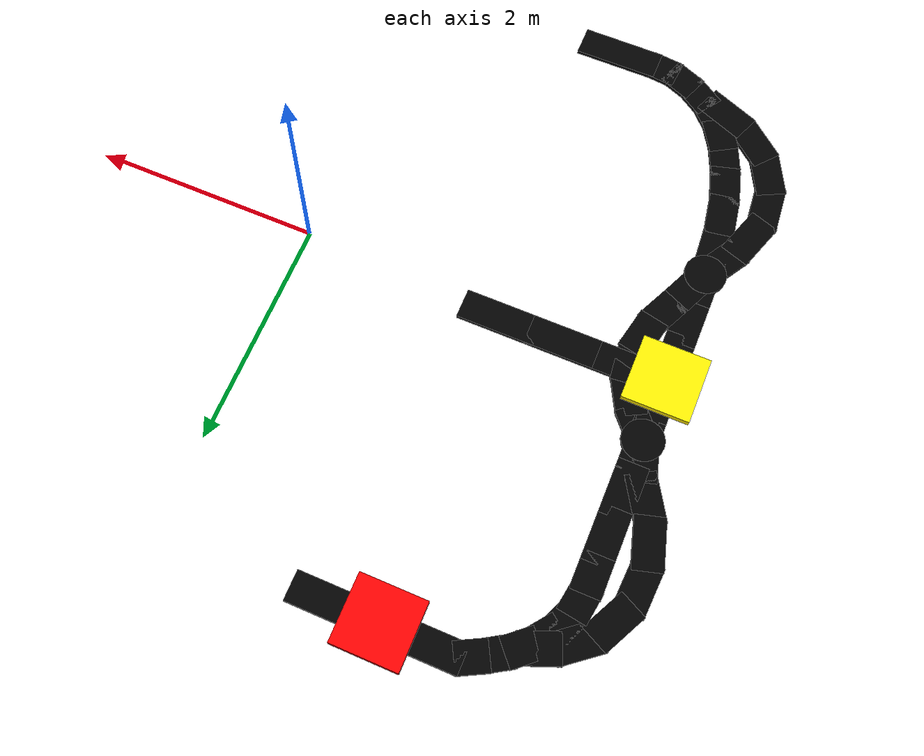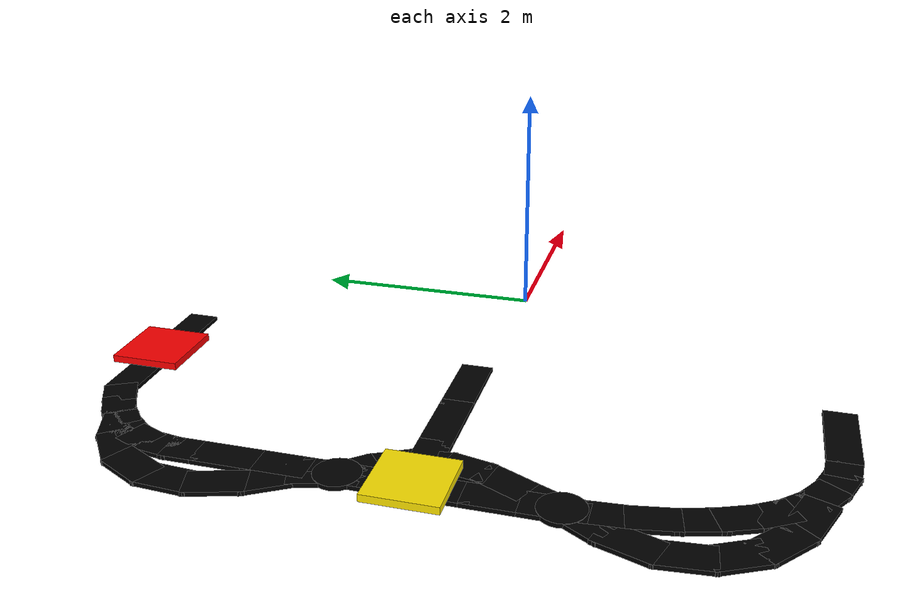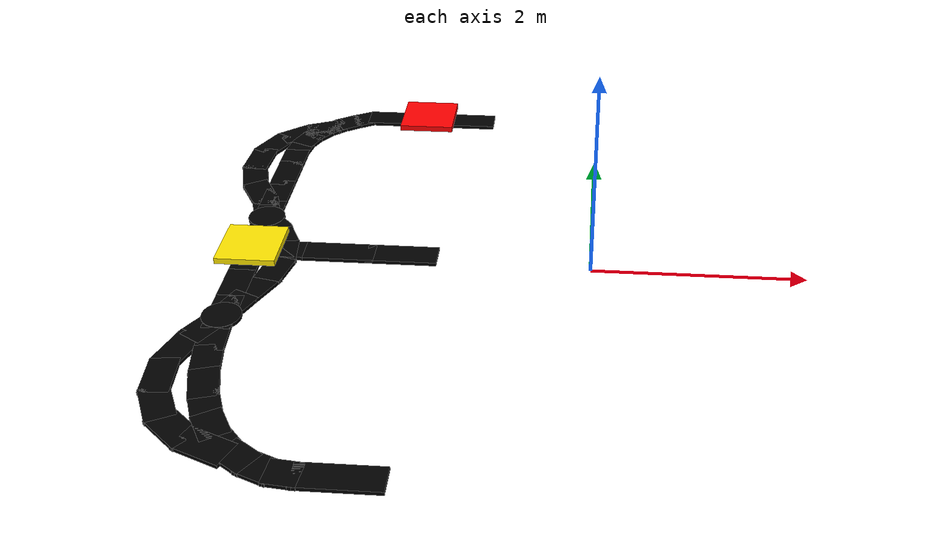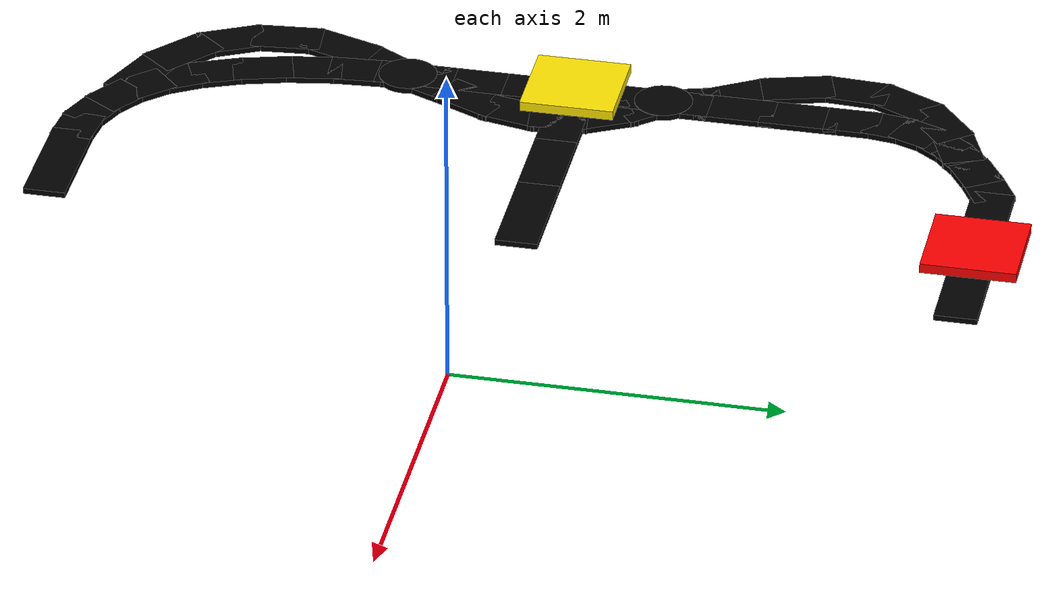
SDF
<sdf version="1.6">
 <world name="agv_factory_v4_smooth_intersection">
  <include><uri>model://sun</uri></include>
  <model name="line_top_01">
   <static>true</static>
   <pose>-2.2250 2.8000 0.0175 0 0 0.0000</pose>
   <link name="link">
    <collision name="collision"><geometry><box><size>0.7300 0.2600 0.0350</size></box></geometry></collision>
    <visual name="visual">
     <geometry><box><size>0.7300 0.2600 0.0350</size></box></geometry>
     <material><ambient>0 0 0 1</ambient><diffuse>0 0 0 1</diffuse></material>
    </visual>
   </link>
  </model>
  <model name="line_top_02">
   <static>true</static>
   <pose>-1.5500 2.8000 0.0175 0 0 0.0000</pose>
   <link name="link">
    <collision name="collision"><geometry><box><size>0.7800 0.2600 0.0350</size></box></geometry></collision>
    <visual name="visual">
     <geometry><box><size>0.7800 0.2600 0.0350</size></box></geometry>
     <material><ambient>0 0 0 1</ambient><diffuse>0 0 0 1</diffuse></material>
    </visual>
   </link>
  </model>
  <model name="line_bottom_06">
   <static>true</static>
   <pose>-1.8250 -2.8000 0.0175 0 0 3.1416</pose>
   <link name="link">
    <collision name="collision"><geometry><box><size>0.7300 0.2600 0.0350</size></box></geometry></collision>
    <visual name="visual">
     <geometry><box><size>0.7300 0.2600 0.0350</size></box></geometry>
     <material><ambient>0 0 0 1</ambient><diffuse>0 0 0 1</diffuse></material>
    </visual>
   </link>
  </model>
  <model name="curve_bottom_left_01">
   <static>true</static>
   <pose>-2.2500 -2.7900 0.0175 0 0 3.0419</pose>
   <link name="link">
    <collision name="collision"><geometry><box><size>0.2810 0.2600 0.0350</size></box></geometry></collision>
    <visual name="visual">
     <geometry><box><size>0.2810 0.2600 0.0350</size></box></geometry>
     <material><ambient>0 0 0 1</ambient><diffuse>0 0 0 1</diffuse></material>
    </visual>
   </link>
  </model>
  <model name="curve_bottom_left_02">
   <static>true</static>
   <pose>-2.4500 -2.7400 0.0175 0 0 2.7611</pose>
   <link name="link">
    <collision name="collision"><geometry><box><size>0.2954 0.2600 0.0350</size></box></geometry></collision>
    <visual name="visual">
     <geometry><box><size>0.2954 0.2600 0.0350</size></box></geometry>
     <material><ambient>0 0 0 1</ambient><diffuse>0 0 0 1</diffuse></material>
    </visual>
   </link>
  </model>
  <model name="curve_bottom_left_03">
   <static>true</static>
   <pose>-2.6400 -2.6400 0.0175 0 0 2.5536</pose>
   <link name="link">
    <collision name="collision"><geometry><box><size>0.2963 0.2600 0.0350</size></box></geometry></collision>
    <visual name="visual">
     <geometry><box><size>0.2963 0.2600 0.0350</size></box></geometry>
     <material><ambient>0 0 0 1</ambient><diffuse>0 0 0 1</diffuse></material>
    </visual>
   </link>
  </model>
  <model name="curve_bottom_left_04">
   <static>true</static>
   <pose>-2.8050 -2.5000 0.0175 0 0 2.3239</pose>
   <link name="link">
    <collision name="collision"><geometry><box><size>0.2993 0.2600 0.0350</size></box></geometry></collision>
    <visual name="visual">
     <geometry><box><size>0.2993 0.2600 0.0350</size></box></geometry>
     <material><ambient>0 0 0 1</ambient><diffuse>0 0 0 1</diffuse></material>
    </visual>
   </link>
  </model>
  <model name="curve_bottom_left_05">
   <static>true</static>
   <pose>-2.9400 -2.3200 0.0175 0 0 2.1112</pose>
   <link name="link">
    <collision name="collision"><geometry><box><size>0.3132 0.2600 0.0350</size></box></geometry></collision>
    <visual name="visual">
     <geometry><box><size>0.3132 0.2600 0.0350</size></box></geometry>
     <material><ambient>0 0 0 1</ambient><diffuse>0 0 0 1</diffuse></material>
    </visual>
   </link>
  </model>
  <model name="curve_bottom_left_06">
   <static>true</static>
   <pose>-3.0500 -2.1000 0.0175 0 0 1.9656</pose>
   <link name="link">
    <collision name="collision"><geometry><box><size>0.3400 0.2600 0.0350</size></box></geometry></collision>
    <visual name="visual">
     <geometry><box><size>0.3400 0.2600 0.0350</size></box></geometry>
     <material><ambient>0 0 0 1</ambient><diffuse>0 0 0 1</diffuse></material>
    </visual>
   </link>
  </model>
  <model name="curve_bottom_left_07">
   <static>true</static>
   <pose>-3.1400 -1.8400 0.0175 0 0 1.8491</pose>
   <link name="link">
    <collision name="collision"><geometry><box><size>0.3712 0.2600 0.0350</size></box></geometry></collision>
    <visual name="visual">
     <geometry><box><size>0.3712 0.2600 0.0350</size></box></geometry>
     <material><ambient>0 0 0 1</ambient><diffuse>0 0 0 1</diffuse></material>
    </visual>
   </link>
  </model>
  <model name="curve_bottom_left_08">
   <static>true</static>
   <pose>-3.2050 -1.5500 0.0175 0 0 1.7359</pose>
   <link name="link">
    <collision name="collision"><geometry><box><size>0.3841 0.2600 0.0350</size></box></geometry></collision>
    <visual name="visual">
     <geometry><box><size>0.3841 0.2600 0.0350</size></box></geometry>
     <material><ambient>0 0 0 1</ambient><diffuse>0 0 0 1</diffuse></material>
    </visual>
   </link>
  </model>
  <model name="curve_bottom_left_09">
   <static>true</static>
   <pose>-3.2400 -1.2500 0.0175 0 0 1.6374</pose>
   <link name="link">
    <collision name="collision"><geometry><box><size>0.3807 0.2600 0.0350</size></box></geometry></collision>
    <visual name="visual">
     <geometry><box><size>0.3807 0.2600 0.0350</size></box></geometry>
     <material><ambient>0 0 0 1</ambient><diffuse>0 0 0 1</diffuse></material>
    </visual>
   </link>
  </model>
  <model name="line_left_01">
   <static>true</static>
   <pose>-3.2500 -0.9000 0.0175 0 0 1.5708</pose>
   <link name="link">
    <collision name="collision"><geometry><box><size>0.4800 0.2600 0.0350</size></box></geometry></collision>
    <visual name="visual">
     <geometry><box><size>0.4800 0.2600 0.0350</size></box></geometry>
     <material><ambient>0 0 0 1</ambient><diffuse>0 0 0 1</diffuse></material>
    </visual>
   </link>
  </model>
  <model name="line_left_02">
   <static>true</static>
   <pose>-3.2500 -0.5000 0.0175 0 0 1.5708</pose>
   <link name="link">
    <collision name="collision"><geometry><box><size>0.4800 0.2600 0.0350</size></box></geometry></collision>
    <visual name="visual">
     <geometry><box><size>0.4800 0.2600 0.0350</size></box></geometry>
     <material><ambient>0 0 0 1</ambient><diffuse>0 0 0 1</diffuse></material>
    </visual>
   </link>
  </model>
  <model name="line_left_03">
   <static>true</static>
   <pose>-3.2500 -0.1000 0.0175 0 0 1.5708</pose>
   <link name="link">
    <collision name="collision"><geometry><box><size>0.4800 0.2600 0.0350</size></box></geometry></collision>
    <visual name="visual">
     <geometry><box><size>0.4800 0.2600 0.0350</size></box></geometry>
     <material><ambient>0 0 0 1</ambient><diffuse>0 0 0 1</diffuse></material>
    </visual>
   </link>
  </model>
  <model name="line_left_04">
   <static>true</static>
   <pose>-3.2500 0.3000 0.0175 0 0 1.5708</pose>
   <link name="link">
    <collision name="collision"><geometry><box><size>0.4800 0.2600 0.0350</size></box></geometry></collision>
    <visual name="visual">
     <geometry><box><size>0.4800 0.2600 0.0350</size></box></geometry>
     <material><ambient>0 0 0 1</ambient><diffuse>0 0 0 1</diffuse></material>
    </visual>
   </link>
  </model>
  <model name="line_left_05">
   <static>true</static>
   <pose>-3.2500 0.7000 0.0175 0 0 1.5708</pose>
   <link name="link">
    <collision name="collision"><geometry><box><size>0.4800 0.2600 0.0350</size></box></geometry></collision>
    <visual name="visual">
     <geometry><box><size>0.4800 0.2600 0.0350</size></box></geometry>
     <material><ambient>0 0 0 1</ambient><diffuse>0 0 0 1</diffuse></material>
    </visual>
   </link>
  </model>
  <model name="line_left_06">
   <static>true</static>
   <pose>-3.2500 1.1000 0.0175 0 0 1.5708</pose>
   <link name="link">
    <collision name="collision"><geometry><box><size>0.4800 0.2600 0.0350</size></box></geometry></collision>
    <visual name="visual">
     <geometry><box><size>0.4800 0.2600 0.0350</size></box></geometry>
     <material><ambient>0 0 0 1</ambient><diffuse>0 0 0 1</diffuse></material>
    </visual>
   </link>
  </model>
  <model name="line_left_07">
   <static>true</static>
   <pose>-3.2500 1.5000 0.0175 0 0 1.5708</pose>
   <link name="link">
    <collision name="collision"><geometry><box><size>0.4800 0.2600 0.0350</size></box></geometry></collision>
    <visual name="visual">
     <geometry><box><size>0.4800 0.2600 0.0350</size></box></geometry>
     <material><ambient>0 0 0 1</ambient><diffuse>0 0 0 1</diffuse></material>
    </visual>
   </link>
  </model>
  <model name="line_left_08">
   <static>true</static>
   <pose>-3.2500 1.8250 0.0175 0 0 1.5708</pose>
   <link name="link">
    <collision name="collision"><geometry><box><size>0.3300 0.2600 0.0350</size></box></geometry></collision>
    <visual name="visual">
     <geometry><box><size>0.3300 0.2600 0.0350</size></box></geometry>
     <material><ambient>0 0 0 1</ambient><diffuse>0 0 0 1</diffuse></material>
    </visual>
   </link>
  </model>
  <model name="curve_top_left_01">
   <static>true</static>
   <pose>-3.2350 2.0500 0.0175 0 0 1.4219</pose>
   <link name="link">
    <collision name="collision"><geometry><box><size>0.2822 0.2600 0.0350</size></box></geometry></collision>
    <visual name="visual">
     <geometry><box><size>0.2822 0.2600 0.0350</size></box></geometry>
     <material><ambient>0 0 0 1</ambient><diffuse>0 0 0 1</diffuse></material>
    </visual>
   </link>
  </model>
  <model name="curve_top_left_02">
   <static>true</static>
   <pose>-3.1850 2.2350 0.0175 0 0 1.1802</pose>
   <link name="link">
    <collision name="collision"><geometry><box><size>0.2638 0.2600 0.0350</size></box></geometry></collision>
    <visual name="visual">
     <geometry><box><size>0.2638 0.2600 0.0350</size></box></geometry>
     <material><ambient>0 0 0 1</ambient><diffuse>0 0 0 1</diffuse></material>
    </visual>
   </link>
  </model>
  <model name="curve_top_left_03">
   <static>true</static>
   <pose>-3.0900 2.4000 0.0175 0 0 0.9273</pose>
   <link name="link">
    <collision name="collision"><geometry><box><size>0.2800 0.2600 0.0350</size></box></geometry></collision>
    <visual name="visual">
     <geometry><box><size>0.2800 0.2600 0.0350</size></box></geometry>
     <material><ambient>0 0 0 1</ambient><diffuse>0 0 0 1</diffuse></material>
    </visual>
   </link>
  </model>
  <model name="curve_top_left_04">
   <static>true</static>
   <pose>-2.9550 2.5450 0.0175 0 0 0.7141</pose>
   <link name="link">
    <collision name="collision"><geometry><box><size>0.2785 0.2600 0.0350</size></box></geometry></collision>
    <visual name="visual">
     <geometry><box><size>0.2785 0.2600 0.0350</size></box></geometry>
     <material><ambient>0 0 0 1</ambient><diffuse>0 0 0 1</diffuse></material>
    </visual>
   </link>
  </model>
  <model name="curve_top_left_05">
   <static>true</static>
   <pose>-2.8000 2.6600 0.0175 0 0 0.5586</pose>
   <link name="link">
    <collision name="collision"><geometry><box><size>0.2687 0.2600 0.0350</size></box></geometry></collision>
    <visual name="visual">
     <geometry><box><size>0.2687 0.2600 0.0350</size></box></geometry>
     <material><ambient>0 0 0 1</ambient><diffuse>0 0 0 1</diffuse></material>
    </visual>
   </link>
  </model>
  <model name="curve_top_left_06">
   <static>true</static>
   <pose>-2.6350 2.7550 0.0175 0 0 0.4869</pose>
   <link name="link">
    <collision name="collision"><geometry><box><size>0.2724 0.2600 0.0350</size></box></geometry></collision>
    <visual name="visual">
     <geometry><box><size>0.2724 0.2600 0.0350</size></box></geometry>
     <material><ambient>0 0 0 1</ambient><diffuse>0 0 0 1</diffuse></material>
    </visual>
   </link>
  </model>
  <model name="line_center_cross_01">
   <static>true</static>
   <pose>-2.9750 0.1000 0.0175 0 0 0.0000</pose>
   <link name="link">
    <collision name="collision"><geometry><box><size>0.6300 0.2600 0.0350</size></box></geometry></collision>
    <visual name="visual">
     <geometry><box><size>0.6300 0.2600 0.0350</size></box></geometry>
     <material><ambient>0 0 0 1</ambient><diffuse>0 0 0 1</diffuse></material>
    </visual>
   </link>
  </model>
  <model name="line_center_cross_02">
   <static>true</static>
   <pose>-2.4000 0.1000 0.0175 0 0 0.0000</pose>
   <link name="link">
    <collision name="collision"><geometry><box><size>0.6800 0.2600 0.0350</size></box></geometry></collision>
    <visual name="visual">
     <geometry><box><size>0.6800 0.2600 0.0350</size></box></geometry>
     <material><ambient>0 0 0 1</ambient><diffuse>0 0 0 1</diffuse></material>
    </visual>
   </link>
  </model>
  <model name="line_center_cross_03">
   <static>true</static>
   <pose>-1.8000 0.1000 0.0175 0 0 0.0000</pose>
   <link name="link">
    <collision name="collision"><geometry><box><size>0.6800 0.2600 0.0350</size></box></geometry></collision>
    <visual name="visual">
     <geometry><box><size>0.6800 0.2600 0.0350</size></box></geometry>
     <material><ambient>0 0 0 1</ambient><diffuse>0 0 0 1</diffuse></material>
    </visual>
   </link>
  </model>
  <model name="left_outer_intersection_upper_01">
   <static>true</static>
   <pose>-3.0750 2.5000 0.0175 0 0 -2.7611</pose>
   <link name="link">
    <collision name="collision"><geometry><box><size>0.3493 0.2600 0.0350</size></box></geometry></collision>
    <visual name="visual">
     <geometry><box><size>0.3493 0.2600 0.0350</size></box></geometry>
     <material><ambient>0 0 0 1</ambient><diffuse>0 0 0 1</diffuse></material>
    </visual>
   </link>
  </model>
  <model name="left_outer_intersection_upper_02">
   <static>true</static>
   <pose>-3.3250 2.3500 0.0175 0 0 -2.4669</pose>
   <link name="link">
    <collision name="collision"><geometry><box><size>0.4002 0.2600 0.0350</size></box></geometry></collision>
    <visual name="visual">
     <geometry><box><size>0.4002 0.2600 0.0350</size></box></geometry>
     <material><ambient>0 0 0 1</ambient><diffuse>0 0 0 1</diffuse></material>
    </visual>
   </link>
  </model>
  <model name="left_outer_intersection_upper_03">
   <static>true</static>
   <pose>-3.5250 2.1000 0.0175 0 0 -2.0344</pose>
   <link name="link">
    <collision name="collision"><geometry><box><size>0.4154 0.2600 0.0350</size></box></geometry></collision>
    <visual name="visual">
     <geometry><box><size>0.4154 0.2600 0.0350</size></box></geometry>
     <material><ambient>0 0 0 1</ambient><diffuse>0 0 0 1</diffuse></material>
    </visual>
   </link>
  </model>
  <model name="left_outer_intersection_upper_04">
   <static>true</static>
   <pose>-3.6100 1.7750 0.0175 0 0 -1.6279</pose>
   <link name="link">
    <collision name="collision"><geometry><box><size>0.4306 0.2600 0.0350</size></box></geometry></collision>
    <visual name="visual">
     <geometry><box><size>0.4306 0.2600 0.0350</size></box></geometry>
     <material><ambient>0 0 0 1</ambient><diffuse>0 0 0 1</diffuse></material>
    </visual>
   </link>
  </model>
  <model name="left_outer_intersection_upper_05">
   <static>true</static>
   <pose>-3.5700 1.4250 0.0175 0 0 -1.2925</pose>
   <link name="link">
    <collision name="collision"><geometry><box><size>0.4440 0.2600 0.0350</size></box></geometry></collision>
    <visual name="visual">
     <geometry><box><size>0.4440 0.2600 0.0350</size></box></geometry>
     <material><ambient>0 0 0 1</ambient><diffuse>0 0 0 1</diffuse></material>
    </visual>
   </link>
  </model>
  <model name="left_outer_intersection_upper_06">
   <static>true</static>
   <pose>-3.4300 1.1000 0.0175 0 0 -1.0304</pose>
   <link name="link">
    <collision name="collision"><geometry><box><size>0.4299 0.2600 0.0350</size></box></geometry></collision>
    <visual name="visual">
     <geometry><box><size>0.4299 0.2600 0.0350</size></box></geometry>
     <material><ambient>0 0 0 1</ambient><diffuse>0 0 0 1</diffuse></material>
    </visual>
   </link>
  </model>
  <model name="left_outer_intersection_upper_07">
   <static>true</static>
   <pose>-3.2950 0.8000 0.0175 0 0 -1.2793</pose>
   <link name="link">
    <collision name="collision"><geometry><box><size>0.3932 0.2600 0.0350</size></box></geometry></collision>
    <visual name="visual">
     <geometry><box><size>0.3932 0.2600 0.0350</size></box></geometry>
     <material><ambient>0 0 0 1</ambient><diffuse>0 0 0 1</diffuse></material>
    </visual>
   </link>
  </model>
  <model name="left_s_intersection_01">
   <static>true</static>
   <pose>-3.1650 0.5500 0.0175 0 0 -0.8663</pose>
   <link name="link">
    <collision name="collision"><geometry><box><size>0.3425 0.2600 0.0350</size></box></geometry></collision>
    <visual name="visual">
     <geometry><box><size>0.3425 0.2600 0.0350</size></box></geometry>
     <material><ambient>0 0 0 1</ambient><diffuse>0 0 0 1</diffuse></material>
    </visual>
   </link>
  </model>
  <model name="left_s_intersection_02">
   <static>true</static>
   <pose>-3.0150 0.3250 0.0175 0 0 -1.0913</pose>
   <link name="link">
    <collision name="collision"><geometry><box><size>0.3618 0.2600 0.0350</size></box></geometry></collision>
    <visual name="visual">
     <geometry><box><size>0.3618 0.2600 0.0350</size></box></geometry>
     <material><ambient>0 0 0 1</ambient><diffuse>0 0 0 1</diffuse></material>
    </visual>
   </link>
  </model>
  <model name="left_s_intersection_03">
   <static>true</static>
   <pose>-2.9350 0.0600 0.0175 0 0 -1.4641</pose>
   <link name="link">
    <collision name="collision"><geometry><box><size>0.3616 0.2600 0.0350</size></box></geometry></collision>
    <visual name="visual">
     <geometry><box><size>0.3616 0.2600 0.0350</size></box></geometry>
     <material><ambient>0 0 0 1</ambient><diffuse>0 0 0 1</diffuse></material>
    </visual>
   </link>
  </model>
  <model name="left_s_intersection_04">
   <static>true</static>
   <pose>-2.9500 -0.2200 0.0175 0 0 -1.7819</pose>
   <link name="link">
    <collision name="collision"><geometry><box><size>0.3664 0.2600 0.0350</size></box></geometry></collision>
    <visual name="visual">
     <geometry><box><size>0.3664 0.2600 0.0350</size></box></geometry>
     <material><ambient>0 0 0 1</ambient><diffuse>0 0 0 1</diffuse></material>
    </visual>
   </link>
  </model>
  <model name="left_s_intersection_05">
   <static>true</static>
   <pose>-3.0500 -0.5100 0.0175 0 0 -2.0074</pose>
   <link name="link">
    <collision name="collision"><geometry><box><size>0.4111 0.2600 0.0350</size></box></geometry></collision>
    <visual name="visual">
     <geometry><box><size>0.4111 0.2600 0.0350</size></box></geometry>
     <material><ambient>0 0 0 1</ambient><diffuse>0 0 0 1</diffuse></material>
    </visual>
   </link>
  </model>
  <model name="left_s_intersection_06">
   <static>true</static>
   <pose>-3.1850 -0.8050 0.0175 0 0 -1.9922</pose>
   <link name="link">
    <collision name="collision"><geometry><box><size>0.3978 0.2600 0.0350</size></box></geometry></collision>
    <visual name="visual">
     <geometry><box><size>0.3978 0.2600 0.0350</size></box></geometry>
     <material><ambient>0 0 0 1</ambient><diffuse>0 0 0 1</diffuse></material>
    </visual>
   </link>
  </model>
  <model name="left_outer_intersection_lower_01">
   <static>true</static>
   <pose>-3.3400 -1.1000 0.0175 0 0 -2.1112</pose>
   <link name="link">
    <collision name="collision"><geometry><box><size>0.4299 0.2600 0.0350</size></box></geometry></collision>
    <visual name="visual">
     <geometry><box><size>0.4299 0.2600 0.0350</size></box></geometry>
     <material><ambient>0 0 0 1</ambient><diffuse>0 0 0 1</diffuse></material>
    </visual>
   </link>
  </model>
  <model name="left_outer_intersection_lower_02">
   <static>true</static>
   <pose>-3.4900 -1.4250 0.0175 0 0 -1.9011</pose>
   <link name="link">
    <collision name="collision"><geometry><box><size>0.4500 0.2600 0.0350</size></box></geometry></collision>
    <visual name="visual">
     <geometry><box><size>0.4500 0.2600 0.0350</size></box></geometry>
     <material><ambient>0 0 0 1</ambient><diffuse>0 0 0 1</diffuse></material>
    </visual>
   </link>
  </model>
  <model name="left_outer_intersection_lower_03">
   <static>true</static>
   <pose>-3.5350 -1.7750 0.0175 0 0 -1.4853</pose>
   <link name="link">
    <collision name="collision"><geometry><box><size>0.4313 0.2600 0.0350</size></box></geometry></collision>
    <visual name="visual">
     <geometry><box><size>0.4313 0.2600 0.0350</size></box></geometry>
     <material><ambient>0 0 0 1</ambient><diffuse>0 0 0 1</diffuse></material>
    </visual>
   </link>
  </model>
  <model name="left_outer_intersection_lower_04">
   <static>true</static>
   <pose>-3.4450 -2.1000 0.0175 0 0 -1.1071</pose>
   <link name="link">
    <collision name="collision"><geometry><box><size>0.4154 0.2600 0.0350</size></box></geometry></collision>
    <visual name="visual">
     <geometry><box><size>0.4154 0.2600 0.0350</size></box></geometry>
     <material><ambient>0 0 0 1</ambient><diffuse>0 0 0 1</diffuse></material>
    </visual>
   </link>
  </model>
  <model name="left_outer_intersection_lower_05">
   <static>true</static>
   <pose>-3.2350 -2.3650 0.0175 0 0 -0.7056</pose>
   <link name="link">
    <collision name="collision"><geometry><box><size>0.4347 0.2600 0.0350</size></box></geometry></collision>
    <visual name="visual">
     <geometry><box><size>0.4347 0.2600 0.0350</size></box></geometry>
     <material><ambient>0 0 0 1</ambient><diffuse>0 0 0 1</diffuse></material>
    </visual>
   </link>
  </model>
  <model name="left_outer_intersection_lower_06">
   <static>true</static>
   <pose>-2.9250 -2.5500 0.0175 0 0 -0.3805</pose>
   <link name="link">
    <collision name="collision"><geometry><box><size>0.4570 0.2600 0.0350</size></box></geometry></collision>
    <visual name="visual">
     <geometry><box><size>0.4570 0.2600 0.0350</size></box></geometry>
     <material><ambient>0 0 0 1</ambient><diffuse>0 0 0 1</diffuse></material>
    </visual>
   </link>
  </model>
  <model name="left_upper_joint">
   <static>true</static>
   <pose>-3.2500 0.6500 0.0205 0 0 0</pose>
   <link name="link">
    <collision name="collision">
     <geometry><cylinder><radius>0.1800</radius><length>0.0350</length></cylinder></geometry>
    </collision>
    <visual name="visual">
     <geometry><cylinder><radius>0.1800</radius><length>0.0350</length></cylinder></geometry>
     <material><ambient>0.0 0.0 0.0 1</ambient><diffuse>0.0 0.0 0.0 1</diffuse></material>
    </visual>
   </link>
  </model>
  <model name="left_lower_joint">
   <static>true</static>
   <pose>-3.2500 -0.9500 0.0205 0 0 0</pose>
   <link name="link">
    <collision name="collision">
     <geometry><cylinder><radius>0.1800</radius><length>0.0350</length></cylinder></geometry>
    </collision>
    <visual name="visual">
     <geometry><cylinder><radius>0.1800</radius><length>0.0350</length></cylinder></geometry>
     <material><ambient>0.0 0.0 0.0 1</ambient><diffuse>0.0 0.0 0.0 1</diffuse></material>
    </visual>
   </link>
  </model>
  <model name="left_center_joint">
   <static>true</static>
   <pose>-3.2500 0.1000 0.0205 0 0 0</pose>
   <link name="link">
    <collision name="collision">
     <geometry><cylinder><radius>0.1800</radius><length>0.0350</length></cylinder></geometry>
    </collision>
    <visual name="visual">
     <geometry><cylinder><radius>0.1800</radius><length>0.0350</length></cylinder></geometry>
     <material><ambient>0.0 0.0 0.0 1</ambient><diffuse>0.0 0.0 0.0 1</diffuse></material>
    </visual>
   </link>
  </model>
  <model name="red_square">
   <static>true</static>
   <pose>-1.9000 2.8000 0.0650 0 0 0.0000</pose>
   <link name="link">
    <collision name="collision"><geometry><box><size>0.5800 0.5800 0.0600</size></box></geometry></collision>
    <visual name="visual">
     <geometry><box><size>0.5800 0.5800 0.0600</size></box></geometry>
     <material><ambient>1.0 0.0 0.0 1</ambient><diffuse>1.0 0.0 0.0 1</diffuse></material>
    </visual>
   </link>
  </model>
  <model name="yellow_square">
   <static>true</static>
   <pose>-3.2500 0.1000 0.0650 0 0 0.0000</pose>
   <link name="link">
    <collision name="collision"><geometry><box><size>0.5800 0.5800 0.0600</size></box></geometry></collision>
    <visual name="visual">
     <geometry><box><size>0.5800 0.5800 0.0600</size></box></geometry>
     <material><ambient>1.0 0.9 0.0 1</ambient><diffuse>1.0 0.9 0.0 1</diffuse></material>
    </visual>
   </link>
  </model>
 </world>
</sdf>
